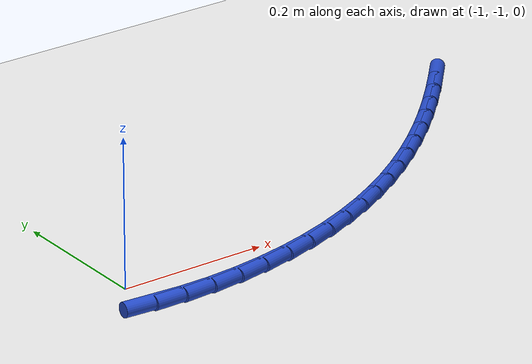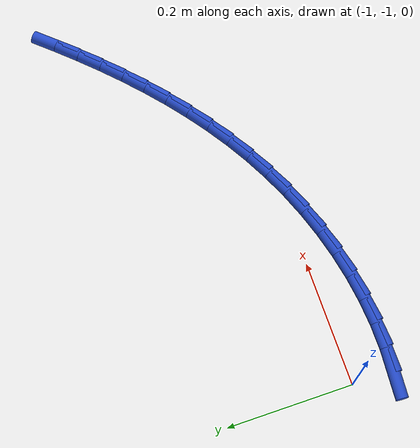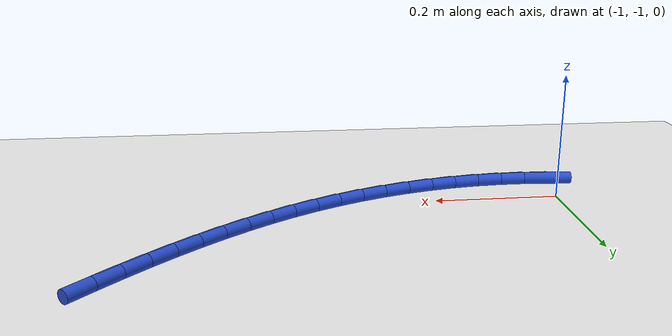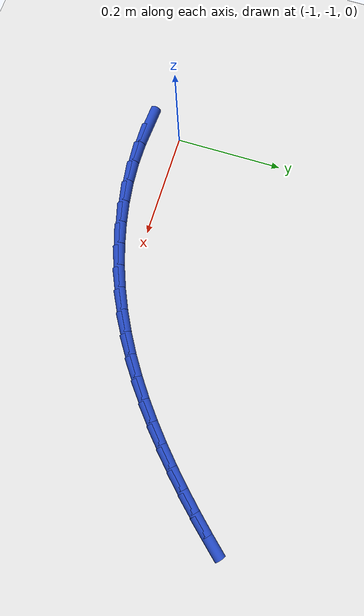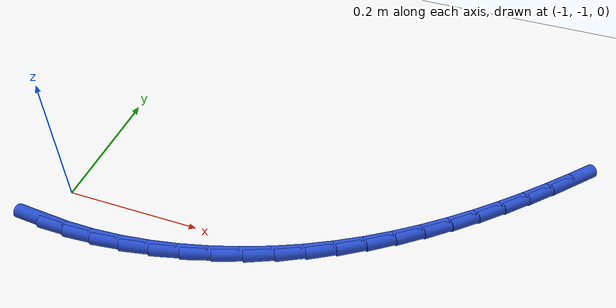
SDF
<sdf version="1.6">
 <world name="default">
  <model name="ground_plane">
   <static>1</static>
   <link name="link">
    <collision name="collision">
     <geometry><plane><normal>0 0 1</normal><size>100 100</size></plane></geometry>
     <surface><friction><ode><mu>100</mu><mu2>50</mu2></ode></friction></surface>
    </collision>
    <visual name="visual">
     <cast_shadows>0</cast_shadows>
     <geometry><plane><normal>0 0 1</normal><size>100 100</size></plane></geometry>
     <material>
      <script><uri>file://media/materials/scripts/gazebo.material</uri><name>Gazebo/WhiteGlow</name></script>
     </material>
    </visual>
   </link>
  </model>
  <model name="line">
   <link name="link_121">
    <pose>-1.0052895362300671 -1.064371150495976 0.01 0 1.57 -0.06827673266527136</pose>
    <collision name="collision">
     <geometry><cylinder><radius>0.01</radius><length>0.08</length></cylinder></geometry>
    </collision>
    <visual name="visual">
     <material>
      <script><name>Gazebo/Blue</name><uri>file://media/materials/scripts/gazebo.material</uri></script>
     </material>
     <geometry><cylinder><radius>0.01</radius><length>0.08</length></cylinder></geometry>
    </visual>
   </link>
   <link name="link_122">
    <pose>-0.9647202327720048 -1.06714540224404 0.01 0 1.57 0.004154189386765752</pose>
    <collision name="collision">
     <geometry><cylinder><radius>0.01</radius><length>0.08</length></cylinder></geometry>
    </collision>
    <visual name="visual">
     <material>
      <script><name>Gazebo/Blue</name><uri>file://media/materials/scripts/gazebo.material</uri></script>
     </material>
     <geometry><cylinder><radius>0.01</radius><length>0.08</length></cylinder></geometry>
    </visual>
   </link>
   <link name="link_123">
    <pose>-0.9235980395930903 -1.066974571882885 0.01 0 1.57 0.07202714386375661</pose>
    <collision name="collision">
     <geometry><cylinder><radius>0.01</radius><length>0.08</length></cylinder></geometry>
    </collision>
    <visual name="visual">
     <material>
      <script><name>Gazebo/Blue</name><uri>file://media/materials/scripts/gazebo.material</uri></script>
     </material>
     <geometry><cylinder><radius>0.01</radius><length>0.08</length></cylinder></geometry>
    </visual>
   </link>
   <link name="link_124">
    <pose>-0.8821792998405756 -1.0639861286434993 0.01 0 1.57 0.13612190469346994</pose>
    <collision name="collision">
     <geometry><cylinder><radius>0.01</radius><length>0.08</length></cylinder></geometry>
    </collision>
    <visual name="visual">
     <material>
      <script><name>Gazebo/Blue</name><uri>file://media/materials/scripts/gazebo.material</uri></script>
     </material>
     <geometry><cylinder><radius>0.01</radius><length>0.08</length></cylinder></geometry>
    </visual>
   </link>
   <link name="link_125">
    <pose>-0.8407203566617121 -1.0583075417568706 0.01 0 1.57 0.19722537544857882</pose>
    <collision name="collision">
     <geometry><cylinder><radius>0.01</radius><length>0.08</length></cylinder></geometry>
    </collision>
    <visual name="visual">
     <material>
      <script><name>Gazebo/Blue</name><uri>file://media/materials/scripts/gazebo.material</uri></script>
     </material>
     <geometry><cylinder><radius>0.01</radius><length>0.08</length></cylinder></geometry>
    </visual>
   </link>
   <link name="link_126">
    <pose>-0.7994775532037511 -1.0500662804539875 0.01 0 1.57 0.25611753505852636</pose>
    <collision name="collision">
     <geometry><cylinder><radius>0.01</radius><length>0.08</length></cylinder></geometry>
    </collision>
    <visual name="visual">
     <material>
      <script><name>Gazebo/Blue</name><uri>file://media/materials/scripts/gazebo.material</uri></script>
     </material>
     <geometry><cylinder><radius>0.01</radius><length>0.08</length></cylinder></geometry>
    </visual>
   </link>
   <link name="link_127">
    <pose>-0.7587072326139459 -1.0393898139658377 0.01 0 1.57 0.3135702996726753</pose>
    <collision name="collision">
     <geometry><cylinder><radius>0.01</radius><length>0.08</length></cylinder></geometry>
    </collision>
    <visual name="visual">
     <material>
      <script><name>Gazebo/Blue</name><uri>file://media/materials/scripts/gazebo.material</uri></script>
     </material>
     <geometry><cylinder><radius>0.01</radius><length>0.08</length></cylinder></geometry>
    </visual>
   </link>
   <link name="link_128">
    <pose>-0.7186657380395478 -1.02640561152341 0.01 0 1.57 0.3703551400892656</pose>
    <collision name="collision">
     <geometry><cylinder><radius>0.01</radius><length>0.08</length></cylinder></geometry>
    </collision>
    <visual name="visual">
     <material>
      <script><name>Gazebo/Blue</name><uri>file://media/materials/scripts/gazebo.material</uri></script>
     </material>
     <geometry><cylinder><radius>0.01</radius><length>0.08</length></cylinder></geometry>
    </visual>
   </link>
   <link name="link_129">
    <pose>-0.6796094126278084 -1.0112411423576912 0.01 0 1.57 0.4268966335662025</pose>
    <collision name="collision">
     <geometry><cylinder><radius>0.01</radius><length>0.08</length></cylinder></geometry>
    </collision>
    <visual name="visual">
     <material>
      <script><name>Gazebo/Blue</name><uri>file://media/materials/scripts/gazebo.material</uri></script>
     </material>
     <geometry><cylinder><radius>0.01</radius><length>0.08</length></cylinder></geometry>
    </visual>
   </link>
   <link name="link_130">
    <pose>-0.6417594637981222 -0.9940243269641993 0.01 0 1.57 0.4814826542379164</pose>
    <collision name="collision">
     <geometry><cylinder><radius>0.01</radius><length>0.08</length></cylinder></geometry>
    </collision>
    <visual name="visual">
     <material>
      <script><name>Gazebo/Blue</name><uri>file://media/materials/scripts/gazebo.material</uri></script>
     </material>
     <geometry><cylinder><radius>0.01</radius><length>0.08</length></cylinder></geometry>
    </visual>
   </link>
   <link name="link_131">
    <pose>-0.6051303673284782 -0.9748857409892727 0.01 0 1.57 0.5330765181870263</pose>
    <collision name="collision">
     <geometry><cylinder><radius>0.01</radius><length>0.08</length></cylinder></geometry>
    </collision>
    <visual name="visual">
     <material>
      <script><name>Gazebo/Blue</name><uri>file://media/materials/scripts/gazebo.material</uri></script>
     </material>
     <geometry><cylinder><radius>0.01</radius><length>0.08</length></cylinder></geometry>
    </visual>
   </link>
   <link name="link_132">
    <pose>-0.5696612398568233 -0.9539569279518103 0.01 0 1.57 0.5814085448318058</pose>
    <collision name="collision">
     <geometry><cylinder><radius>0.01</radius><length>0.08</length></cylinder></geometry>
    </collision>
    <visual name="visual">
     <material>
      <script><name>Gazebo/Blue</name><uri>file://media/materials/scripts/gazebo.material</uri></script>
     </material>
     <geometry><cylinder><radius>0.01</radius><length>0.08</length></cylinder></geometry>
    </visual>
   </link>
   <link name="link_133">
    <pose>-0.5352910885448988 -0.9313694327767637 0.01 0 1.57 0.6263008300879238</pose>
    <collision name="collision">
     <geometry><cylinder><radius>0.01</radius><length>0.08</length></cylinder></geometry>
    </collision>
    <visual name="visual">
     <material>
      <script><name>Gazebo/Blue</name><uri>file://media/materials/scripts/gazebo.material</uri></script>
     </material>
     <geometry><cylinder><radius>0.01</radius><length>0.08</length></cylinder></geometry>
    </visual>
   </link>
   <link name="link_134">
    <pose>-0.5019589205544484 -0.9072548003890843 0.01 0 1.57 0.6676543751321795</pose>
    <collision name="collision">
     <geometry><cylinder><radius>0.01</radius><length>0.08</length></cylinder></geometry>
    </collision>
    <visual name="visual">
     <material>
      <script><name>Gazebo/Blue</name><uri>file://media/materials/scripts/gazebo.material</uri></script>
     </material>
     <geometry><cylinder><radius>0.01</radius><length>0.08</length></cylinder></geometry>
    </visual>
   </link>
   <link name="link_135">
    <pose>-0.4696037430472149 -0.8817445757137247 0.01 0 1.57 0.7054345009373337</pose>
    <collision name="collision">
     <geometry><cylinder><radius>0.01</radius><length>0.08</length></cylinder></geometry>
    </collision>
    <visual name="visual">
     <material>
      <script><name>Gazebo/Blue</name><uri>file://media/materials/scripts/gazebo.material</uri></script>
     </material>
     <geometry><cylinder><radius>0.01</radius><length>0.08</length></cylinder></geometry>
    </visual>
   </link>
   <link name="link_136">
    <pose>-0.4381645631849406 -0.8549703036756354 0.01 0 1.57 0.7396554809962506</pose>
    <collision name="collision">
     <geometry><cylinder><radius>0.01</radius><length>0.08</length></cylinder></geometry>
    </collision>
    <visual name="visual">
     <material>
      <script><name>Gazebo/Blue</name><uri>file://media/materials/scripts/gazebo.material</uri></script>
     </material>
     <geometry><cylinder><radius>0.01</radius><length>0.08</length></cylinder></geometry>
    </visual>
   </link>
   <link name="link_137">
    <pose>-0.4075803881293698 -0.8270635291997697 0.01 0 1.57 0.7703658589410514</pose>
    <collision name="collision">
     <geometry><cylinder><radius>0.01</radius><length>0.08</length></cylinder></geometry>
    </collision>
    <visual name="visual">
     <material>
      <script><name>Gazebo/Blue</name><uri>file://media/materials/scripts/gazebo.material</uri></script>
     </material>
     <geometry><cylinder><radius>0.01</radius><length>0.08</length></cylinder></geometry>
    </visual>
   </link>
   <link name="link_138">
    <pose>-0.3777902250422447 -0.7981557972110791 0.01 0 1.57 0.7976353247133348</pose>
    <collision name="collision">
     <geometry><cylinder><radius>0.01</radius><length>0.08</length></cylinder></geometry>
    </collision>
    <visual name="visual">
     <material>
      <script><name>Gazebo/Blue</name><uri>file://media/materials/scripts/gazebo.material</uri></script>
     </material>
     <geometry><cylinder><radius>0.01</radius><length>0.08</length></cylinder></geometry>
    </visual>
   </link>
   <link name="link_139">
    <pose>-0.34873308108530815 -0.7683786526345149 0.01 0 1.57 0.8215435324615784</pose>
    <collision name="collision">
     <geometry><cylinder><radius>0.01</radius><length>0.08</length></cylinder></geometry>
    </collision>
    <visual name="visual">
     <material>
      <script><name>Gazebo/Blue</name><uri>file://media/materials/scripts/gazebo.material</uri></script>
     </material>
     <geometry><cylinder><radius>0.01</radius><length>0.08</length></cylinder></geometry>
    </visual>
   </link>
   <link name="link_140">
    <pose>-0.32034796342030347 -0.7378636403950294 0.01 0 1.57 0.8421708956675201</pose>
    <collision name="collision">
     <geometry><cylinder><radius>0.01</radius><length>0.08</length></cylinder></geometry>
    </collision>
    <visual name="visual">
     <material>
      <script><name>Gazebo/Blue</name><uri>file://media/materials/scripts/gazebo.material</uri></script>
     </material>
     <geometry><cylinder><radius>0.01</radius><length>0.08</length></cylinder></geometry>
    </visual>
   </link>
  </model>
 </world>
</sdf>
